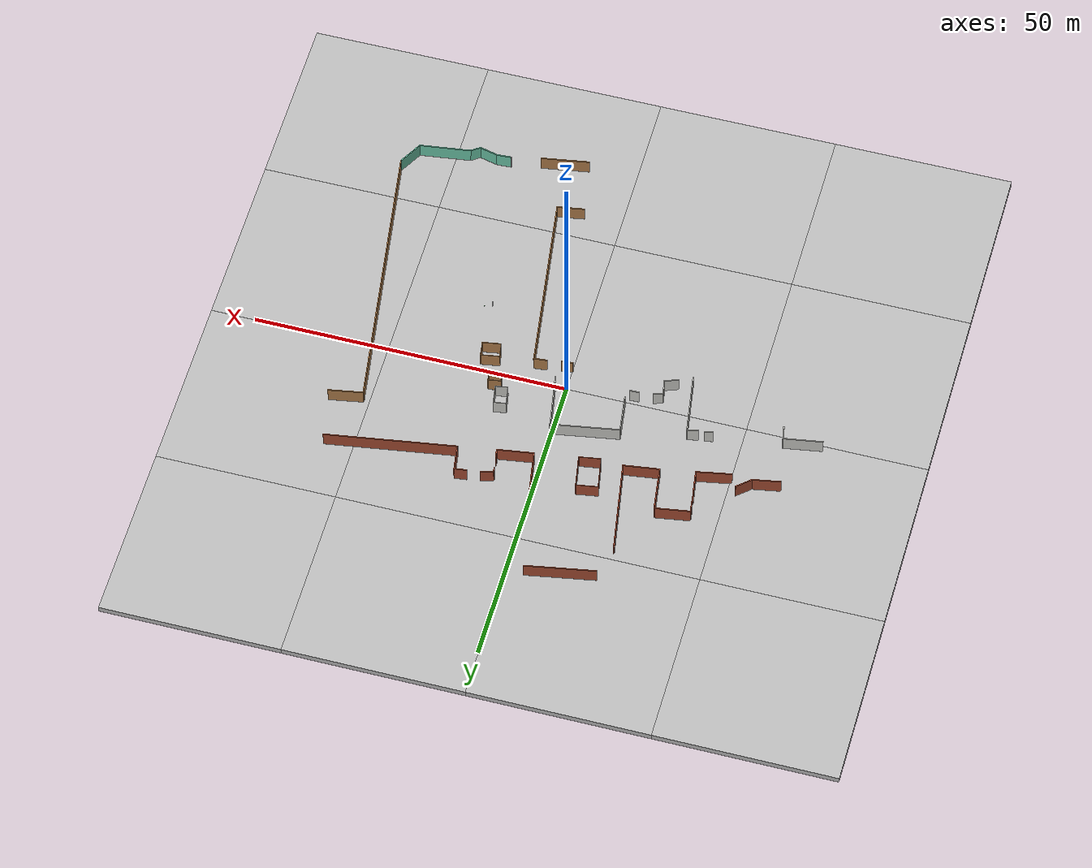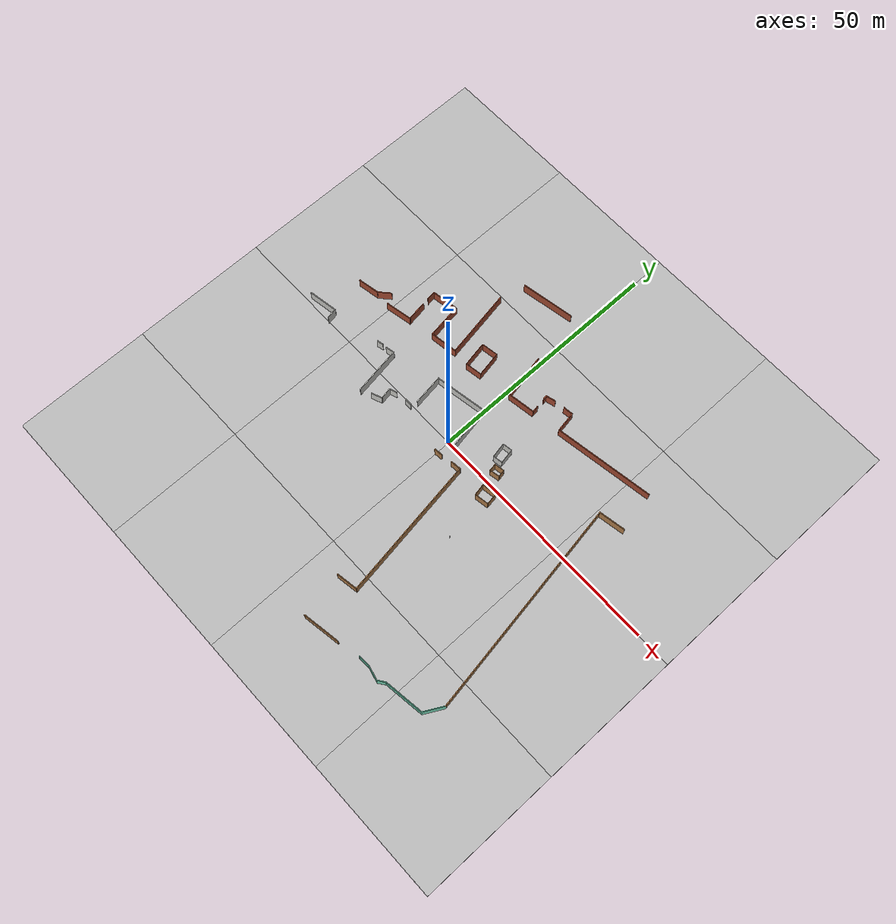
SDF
<sdf version="1.6">
 <world name="default">
  <model name="riseholme_satellite">
   <static>1</static>
   <link name="link">
    <collision name="collision">
     <pose>0 0 -0.5 0 -0 0</pose>
     <geometry><box><size>114.286 114.286 1</size></box></geometry>
    </collision>
    <visual name="visual0_0">
     <pose>-42.8571 42.8571 -0.5 0 -0 1.5708</pose>
     <geometry><box><size>28.5714 28.5714 1</size></box></geometry>
     <material>
      <script>
       <uri>model://riseholme_satellite/materials/scripts</uri>
       <uri>model://riseholme_satellite/materials/textures</uri>
       <name>riseholme_satellite/0_0</name>
      </script>
     </material>
    </visual>
    <visual name="visual0_1">
     <pose>-14.2857 42.8571 -0.5 0 -0 1.5708</pose>
     <geometry><box><size>28.5714 28.5714 1</size></box></geometry>
     <material>
      <script>
       <uri>model://riseholme_satellite/materials/scripts</uri>
       <uri>model://riseholme_satellite/materials/textures</uri>
       <name>riseholme_satellite/0_1</name>
      </script>
     </material>
    </visual>
    <visual name="visual0_2">
     <pose>14.2857 42.8571 -0.5 0 -0 1.5708</pose>
     <geometry><box><size>28.5714 28.5714 1</size></box></geometry>
     <material>
      <script>
       <uri>model://riseholme_satellite/materials/scripts</uri>
       <uri>model://riseholme_satellite/materials/textures</uri>
       <name>riseholme_satellite/0_2</name>
      </script>
     </material>
    </visual>
    <visual name="visual0_3">
     <pose>42.8571 42.8571 -0.5 0 -0 1.5708</pose>
     <geometry><box><size>28.5714 28.5714 1</size></box></geometry>
     <material>
      <script>
       <uri>model://riseholme_satellite/materials/scripts</uri>
       <uri>model://riseholme_satellite/materials/textures</uri>
       <name>riseholme_satellite/0_3</name>
      </script>
     </material>
    </visual>
    <visual name="visual1_0">
     <pose>-42.8571 14.2857 -0.5 0 -0 1.5708</pose>
     <geometry><box><size>28.5714 28.5714 1</size></box></geometry>
     <material>
      <script>
       <uri>model://riseholme_satellite/materials/scripts</uri>
       <uri>model://riseholme_satellite/materials/textures</uri>
       <name>riseholme_satellite/1_0</name>
      </script>
     </material>
    </visual>
    <visual name="visual1_1">
     <pose>-14.2857 14.2857 -0.5 0 -0 1.5708</pose>
     <geometry><box><size>28.5714 28.5714 1</size></box></geometry>
     <material>
      <script>
       <uri>model://riseholme_satellite/materials/scripts</uri>
       <uri>model://riseholme_satellite/materials/textures</uri>
       <name>riseholme_satellite/1_1</name>
      </script>
     </material>
    </visual>
    <visual name="visual1_2">
     <pose>14.2857 14.2857 -0.5 0 -0 1.5708</pose>
     <geometry><box><size>28.5714 28.5714 1</size></box></geometry>
     <material>
      <script>
       <uri>model://riseholme_satellite/materials/scripts</uri>
       <uri>model://riseholme_satellite/materials/textures</uri>
       <name>riseholme_satellite/1_2</name>
      </script>
     </material>
    </visual>
    <visual name="visual1_3">
     <pose>42.8571 14.2857 -0.5 0 -0 1.5708</pose>
     <geometry><box><size>28.5714 28.5714 1</size></box></geometry>
     <material>
      <script>
       <uri>model://riseholme_satellite/materials/scripts</uri>
       <uri>model://riseholme_satellite/materials/textures</uri>
       <name>riseholme_satellite/1_3</name>
      </script>
     </material>
    </visual>
    <visual name="visual2_0">
     <pose>-42.8571 -14.2857 -0.5 0 -0 1.5708</pose>
     <geometry><box><size>28.5714 28.5714 1</size></box></geometry>
     <material>
      <script>
       <uri>model://riseholme_satellite/materials/scripts</uri>
       <uri>model://riseholme_satellite/materials/textures</uri>
       <name>riseholme_satellite/2_0</name>
      </script>
     </material>
    </visual>
    <visual name="visual2_1">
     <pose>-14.2857 -14.2857 -0.5 0 -0 1.5708</pose>
     <geometry><box><size>28.5714 28.5714 1</size></box></geometry>
     <material>
      <script>
       <uri>model://riseholme_satellite/materials/scripts</uri>
       <uri>model://riseholme_satellite/materials/textures</uri>
       <name>riseholme_satellite/2_1</name>
      </script>
     </material>
    </visual>
    <visual name="visual2_2">
     <pose>14.2857 -14.2857 -0.5 0 -0 1.5708</pose>
     <geometry><box><size>28.5714 28.5714 1</size></box></geometry>
     <material>
      <script>
       <uri>model://riseholme_satellite/materials/scripts</uri>
       <uri>model://riseholme_satellite/materials/textures</uri>
       <name>riseholme_satellite/2_2</name>
      </script>
     </material>
    </visual>
    <visual name="visual2_3">
     <pose>42.8571 -14.2857 -0.5 0 -0 1.5708</pose>
     <geometry><box><size>28.5714 28.5714 1</size></box></geometry>
     <material>
      <script>
       <uri>model://riseholme_satellite/materials/scripts</uri>
       <uri>model://riseholme_satellite/materials/textures</uri>
       <name>riseholme_satellite/2_3</name>
      </script>
     </material>
    </visual>
    <visual name="visual3_0">
     <pose>-42.8571 -42.8571 -0.5 0 -0 1.5708</pose>
     <geometry><box><size>28.5714 28.5714 1</size></box></geometry>
     <material>
      <script>
       <uri>model://riseholme_satellite/materials/scripts</uri>
       <uri>model://riseholme_satellite/materials/textures</uri>
       <name>riseholme_satellite/3_0</name>
      </script>
     </material>
    </visual>
    <visual name="visual3_1">
     <pose>-14.2857 -42.8571 -0.5 0 -0 1.5708</pose>
     <geometry><box><size>28.5714 28.5714 1</size></box></geometry>
     <material>
      <script>
       <uri>model://riseholme_satellite/materials/scripts</uri>
       <uri>model://riseholme_satellite/materials/textures</uri>
       <name>riseholme_satellite/3_1</name>
      </script>
     </material>
    </visual>
    <visual name="visual3_2">
     <pose>14.2857 -42.8571 -0.5 0 -0 1.5708</pose>
     <geometry><box><size>28.5714 28.5714 1</size></box></geometry>
     <material>
      <script>
       <uri>model://riseholme_satellite/materials/scripts</uri>
       <uri>model://riseholme_satellite/materials/textures</uri>
       <name>riseholme_satellite/3_2</name>
      </script>
     </material>
    </visual>
    <visual name="visual3_3">
     <pose>42.8571 -42.8571 -0.5 0 -0 1.5708</pose>
     <geometry><box><size>28.5714 28.5714 1</size></box></geometry>
     <material>
      <script>
       <uri>model://riseholme_satellite/materials/scripts</uri>
       <uri>model://riseholme_satellite/materials/textures</uri>
       <name>riseholme_satellite/3_3</name>
      </script>
     </material>
    </visual>
   </link>
  </model>
  <model name="pole_36">
   <static>1</static>
   <pose>15.22 -12.25 0.575 0 -0 0</pose>
   <link name="link">
    <collision name="collision">
     <geometry><cylinder><length>1.15</length><radius>0.025</radius></cylinder></geometry>
    </collision>
    <visual name="visual">
     <geometry><cylinder><length>1.15</length><radius>0.025</radius></cylinder></geometry>
     <material>
      <script><uri>file://media/materials/scripts/gazebo.material</uri><name>Gazebo/Chrome</name></script>
      <shader type="vertex"><normal_map>__default__</normal_map></shader>
      <emissive>0.1 0.1 0.1 1</emissive>
      <specular>0.01 0.01 0.01 1</specular>
      <ambient>0.5 0.5 0.5 1</ambient>
      <diffuse>0.05 0.05 0.05 1</diffuse>
     </material>
    </visual>
   </link>
  </model>
  <model name="pole_45">
   <static>1</static>
   <pose>13.9 -12.45 0.575 0 -0 0</pose>
   <link name="link">
    <collision name="collision">
     <geometry><cylinder><length>1.15</length><radius>0.025</radius></cylinder></geometry>
    </collision>
    <visual name="visual">
     <geometry><cylinder><length>1.15</length><radius>0.025</radius></cylinder></geometry>
     <material>
      <script><uri>file://media/materials/scripts/gazebo.material</uri><name>Gazebo/Chrome</name></script>
      <shader type="vertex"><normal_map>__default__</normal_map></shader>
      <emissive>0.1 0.1 0.1 1</emissive>
      <specular>0.01 0.01 0.01 1</specular>
      <ambient>0.5 0.5 0.5 1</ambient>
      <diffuse>0.05 0.05 0.05 1</diffuse>
     </material>
    </visual>
   </link>
  </model>
  <model name="pole_54">
   <static>1</static>
   <pose>12.55 -12.26 0.575 0 -0 0</pose>
   <link name="link">
    <collision name="collision">
     <geometry><cylinder><length>1.15</length><radius>0.025</radius></cylinder></geometry>
    </collision>
    <visual name="visual">
     <geometry><cylinder><length>1.15</length><radius>0.025</radius></cylinder></geometry>
     <material>
      <script><uri>file://media/materials/scripts/gazebo.material</uri><name>Gazebo/Chrome</name></script>
      <shader type="vertex"><normal_map>__default__</normal_map></shader>
      <emissive>0.1 0.1 0.1 1</emissive>
      <specular>0.01 0.01 0.01 1</specular>
      <ambient>0.5 0.5 0.5 1</ambient>
      <diffuse>0.05 0.05 0.05 1</diffuse>
     </material>
    </visual>
   </link>
  </model>
  <model name="riseholme_encolsure">
   <pose>-0.453277 -4.89704 0 0 0 -1.35297</pose>
   <link name="Wall_10">
    <collision name="Wall_10_Collision">
     <geometry><box><size>4.40408 0.15 2.5</size></box></geometry>
     <pose>0 0 1.25 0 -0 0</pose>
    </collision>
    <visual name="Wall_10_Visual">
     <pose>0 0 1.25 0 -0 0</pose>
     <geometry><box><size>4.40408 0.15 2.5</size></box></geometry>
     <material>
      <script><uri>file://media/materials/scripts/gazebo.material</uri><name>Gazebo/Grey</name></script>
      <ambient>0.435294 0.796078 0.67451 1</ambient>
     </material>
     <meta><layer>0</layer></meta>
    </visual>
    <pose>37.9809 28.2217 0 0 -0 -0.71569</pose>
   </link>
   <link name="Wall_100">
    <collision name="Wall_100_Collision">
     <geometry><box><size>1.38035 0.15 2.5</size></box></geometry>
     <pose>0 0 1.25 0 -0 0</pose>
    </collision>
    <visual name="Wall_100_Visual">
     <pose>0 0 1.25 0 -0 0</pose>
     <geometry><box><size>1.38035 0.15 2.5</size></box></geometry>
     <material>
      <script><uri>file://media/materials/scripts/gazebo.material</uri><name>Gazebo/CeilingTiled</name></script>
      <ambient>1 1 1 1</ambient>
     </material>
     <meta><layer>0</layer></meta>
    </visual>
    <pose>-13.3343 -20.6396 0 0 -0 -1.5708</pose>
   </link>
   <link name="Wall_102">
    <collision name="Wall_102_Collision">
     <geometry><box><size>5.25909 0.07 2.5</size></box></geometry>
     <pose>0 0 1.25 0 -0 0</pose>
    </collision>
    <visual name="Wall_102_Visual">
     <pose>0 0 1.25 0 -0 0</pose>
     <geometry><box><size>5.25909 0.07 2.5</size></box></geometry>
     <material>
      <script><uri>file://media/materials/scripts/gazebo.material</uri><name>Gazebo/Bricks</name></script>
      <ambient>1 1 1 1</ambient>
     </material>
     <meta><layer>0</layer></meta>
    </visual>
    <pose>-21.5336 -0.928753 0 0 -0 -0.039709</pose>
   </link>
   <link name="Wall_103">
    <collision name="Wall_103_Collision">
     <geometry><box><size>3.49121 0.07 2.5</size></box></geometry>
     <pose>0 0 1.25 0 -0 0</pose>
    </collision>
    <visual name="Wall_103_Visual">
     <pose>0 0 1.25 0 -0 0</pose>
     <geometry><box><size>3.49121 0.07 2.5</size></box></geometry>
     <material>
      <script><uri>file://media/materials/scripts/gazebo.material</uri><name>Gazebo/Bricks</name></script>
      <ambient>1 1 1 1</ambient>
     </material>
     <meta><layer>0</layer></meta>
    </visual>
    <pose>-19.0441 -2.73925 0 0 -0 -1.63105</pose>
   </link>
   <link name="Wall_104">
    <collision name="Wall_104_Collision">
     <geometry><box><size>5.24692 0.07 2.5</size></box></geometry>
     <pose>0 0 1.25 0 -0 0</pose>
    </collision>
    <visual name="Wall_104_Visual">
     <pose>0 0 1.25 0 -0 0</pose>
     <geometry><box><size>5.24692 0.07 2.5</size></box></geometry>
     <material>
      <script><uri>file://media/materials/scripts/gazebo.material</uri><name>Gazebo/Bricks</name></script>
      <ambient>1 1 1 1</ambient>
     </material>
     <meta><layer>0</layer></meta>
    </visual>
    <pose>-21.7333 -4.34992 0 0 -0 3.10417</pose>
   </link>
   <link name="Wall_105">
    <collision name="Wall_105_Collision">
     <geometry><box><size>3.49429 0.07 2.5</size></box></geometry>
     <pose>0 0 1.25 0 -0 0</pose>
    </collision>
    <visual name="Wall_105_Visual">
     <pose>0 0 1.25 0 -0 0</pose>
     <geometry><box><size>3.49429 0.07 2.5</size></box></geometry>
     <material>
      <script><uri>file://media/materials/scripts/gazebo.material</uri><name>Gazebo/Bricks</name></script>
      <ambient>1 1 1 1</ambient>
     </material>
     <meta><layer>0</layer></meta>
    </visual>
    <pose>-24.2229 -2.53786 0 0 -0 1.51436</pose>
   </link>
   <link name="Wall_11">
    <collision name="Wall_11_Collision">
     <geometry><box><size>8.22495 0.15 2.5</size></box></geometry>
     <pose>0 0 1.25 0 -0 0</pose>
    </collision>
    <visual name="Wall_11_Visual">
     <pose>0 0 1.25 0 -0 0</pose>
     <geometry><box><size>8.22495 0.15 2.5</size></box></geometry>
     <material>
      <script><uri>file://media/materials/scripts/gazebo.material</uri><name>Gazebo/Grey</name></script>
      <ambient>0.435294 0.796078 0.67451 1</ambient>
     </material>
     <meta><layer>0</layer></meta>
    </visual>
    <pose>39.2604 22.8017 0 0 -0 -1.6515</pose>
   </link>
   <link name="Wall_12">
    <collision name="Wall_12_Collision">
     <geometry><box><size>1.81774 0.15 2.5</size></box></geometry>
     <pose>0 0 1.25 0 -0 0</pose>
    </collision>
    <visual name="Wall_12_Visual">
     <pose>0 0 1.25 0 -0 0</pose>
     <geometry><box><size>1.81774 0.15 2.5</size></box></geometry>
     <material>
      <script><uri>file://media/materials/scripts/gazebo.material</uri><name>Gazebo/Grey</name></script>
      <ambient>0.435294 0.796078 0.67451 1</ambient>
     </material>
     <meta><layer>0</layer></meta>
    </visual>
    <pose>39.2604 18.0097 0 0 -0 -1.16969</pose>
   </link>
   <link name="Wall_13">
    <collision name="Wall_13_Collision">
     <geometry><box><size>3.14637 0.15 2.5</size></box></geometry>
     <pose>0 0 1.25 0 -0 0</pose>
    </collision>
    <visual name="Wall_13_Visual">
     <pose>0 0 1.25 0 -0 0</pose>
     <geometry><box><size>3.14637 0.15 2.5</size></box></geometry>
     <material>
      <script><uri>file://media/materials/scripts/gazebo.material</uri><name>Gazebo/Grey</name></script>
      <ambient>0.435294 0.796078 0.67451 1</ambient>
     </material>
     <meta><layer>0</layer></meta>
    </visual>
    <pose>38.9349 15.8932 0 0 -0 -2.02041</pose>
   </link>
   <link name="Wall_14">
    <collision name="Wall_14_Collision">
     <geometry><box><size>2.45986 0.15 2.5</size></box></geometry>
     <pose>0 0 1.25 0 -0 0</pose>
    </collision>
    <visual name="Wall_14_Visual">
     <pose>0 0 1.25 0 -0 0</pose>
     <geometry><box><size>2.45986 0.15 2.5</size></box></geometry>
     <material>
      <script><uri>file://media/materials/scripts/gazebo.material</uri><name>Gazebo/Grey</name></script>
      <ambient>0.435294 0.796078 0.67451 1</ambient>
     </material>
     <meta><layer>0</layer></meta>
    </visual>
    <pose>38.0974 13.4042 0 0 -0 -1.73296</pose>
   </link>
   <link name="Wall_15">
    <collision name="Wall_15_Collision">
     <geometry><box><size>0.16 0.15 2.5</size></box></geometry>
     <pose>0 0 1.25 0 -0 0</pose>
    </collision>
    <visual name="Wall_15_Visual">
     <pose>0 0 1.25 0 -0 0</pose>
     <geometry><box><size>0.16 0.15 2.5</size></box></geometry>
     <material>
      <script><uri>file://media/materials/scripts/gazebo.material</uri><name>Gazebo/Grey</name></script>
      <ambient>1 1 1 1</ambient>
     </material>
     <meta><layer>0</layer></meta>
    </visual>
    <pose>37.9161 12.2642 0 0 -0 -0.015821</pose>
   </link>
   <link name="Wall_17">
    <collision name="Wall_17_Collision">
     <geometry><box><size>7.7914 0.15 2.5</size></box></geometry>
     <pose>0 0 1.25 0 -0 0</pose>
    </collision>
    <visual name="Wall_17_Visual">
     <pose>0 0 1.25 0 -0 0</pose>
     <geometry><box><size>7.7914 0.15 2.5</size></box></geometry>
     <material>
      <script><uri>file://media/materials/scripts/gazebo.material</uri><name>Gazebo/Wood</name></script>
      <ambient>1 1 1 1</ambient>
     </material>
     <meta><layer>0</layer></meta>
    </visual>
    <pose>37.7484 3.75021 0 0 -0 -1.62562</pose>
   </link>
   <link name="Wall_19">
    <collision name="Wall_19_Collision">
     <geometry><box><size>4.48297 0.15 2.5</size></box></geometry>
     <pose>0 0 1.25 0 -0 0</pose>
    </collision>
    <visual name="Wall_19_Visual">
     <pose>0 0 1.25 0 -0 0</pose>
     <geometry><box><size>4.48297 0.15 2.5</size></box></geometry>
     <material>
      <script><uri>file://media/materials/scripts/gazebo.material</uri><name>Gazebo/Wood</name></script>
      <ambient>1 1 1 1</ambient>
     </material>
     <meta><layer>0</layer></meta>
    </visual>
    <pose>28.3339 2.41776 0 0 -0 1.51709</pose>
   </link>
   <link name="Wall_20">
    <collision name="Wall_20_Collision">
     <geometry><box><size>29.5845 0.15 2.5</size></box></geometry>
     <pose>0 0 1.25 0 -0 0</pose>
    </collision>
    <visual name="Wall_20_Visual">
     <pose>0 0 1.25 0 -0 0</pose>
     <geometry><box><size>29.5845 0.15 2.5</size></box></geometry>
     <material>
      <script><uri>file://media/materials/scripts/gazebo.material</uri><name>Gazebo/Wood</name></script>
      <ambient>1 1 1 1</ambient>
     </material>
     <meta><layer>0</layer></meta>
    </visual>
    <pose>13.7719 5.65117 0 0 -0 3.06882</pose>
   </link>
   <link name="Wall_21">
    <collision name="Wall_21_Collision">
     <geometry><box><size>2.21023 0.15 2.5</size></box></geometry>
     <pose>0 0 1.25 0 -0 0</pose>
    </collision>
    <visual name="Wall_21_Visual">
     <pose>0 0 1.25 0 -0 0</pose>
     <geometry><box><size>2.21023 0.15 2.5</size></box></geometry>
     <material>
      <script><uri>file://media/materials/scripts/gazebo.material</uri><name>Gazebo/Wood</name></script>
      <ambient>1 1 1 1</ambient>
     </material>
     <meta><layer>0</layer></meta>
    </visual>
    <pose>-1.02272 5.6977 0 0 -0 -1.68395</pose>
   </link>
   <link name="Wall_23">
    <collision name="Wall_23_Collision">
     <geometry><box><size>1.78894 0.15 2.5</size></box></geometry>
     <pose>0 0 1.25 0 -0 0</pose>
    </collision>
    <visual name="Wall_23_Visual">
     <pose>0 0 1.25 0 -0 0</pose>
     <geometry><box><size>1.78894 0.15 2.5</size></box></geometry>
     <material>
      <script><uri>file://media/materials/scripts/gazebo.material</uri><name>Gazebo/Wood</name></script>
      <ambient>1 1 1 1</ambient>
     </material>
     <meta><layer>0</layer></meta>
    </visual>
    <pose>-1.32513 1.53381 0 0 -0 -1.68459</pose>
   </link>
   <link name="Wall_25">
    <collision name="Wall_25_Collision">
     <geometry><box><size>9.22979 0.15 2.5</size></box></geometry>
     <pose>0 0 1.25 0 -0 0</pose>
    </collision>
    <visual name="Wall_25_Visual">
     <pose>0 0 1.25 0 -0 0</pose>
     <geometry><box><size>9.22979 0.15 2.5</size></box></geometry>
     <material>
      <script><uri>file://media/materials/scripts/gazebo.material</uri><name>Gazebo/CeilingTiled</name></script>
      <ambient>1 1 1 1</ambient>
     </material>
     <meta><layer>0</layer></meta>
    </visual>
    <pose>-8.65264 3.41803 0 0 -0 3.10059</pose>
   </link>
   <link name="Wall_28">
    <collision name="Wall_28_Collision">
     <geometry><box><size>20.7055 0.15 2.5</size></box></geometry>
     <pose>0 0 1.25 0 -0 0</pose>
    </collision>
    <visual name="Wall_28_Visual">
     <pose>0 0 1.25 0 -0 0</pose>
     <geometry><box><size>20.7055 0.15 2.5</size></box></geometry>
     <material>
      <script><uri>file://media/materials/scripts/gazebo.material</uri><name>Gazebo/Bricks</name></script>
      <ambient>1 1 1 1</ambient>
     </material>
     <meta><layer>0</layer></meta>
    </visual>
    <pose>-17.2596 27.7733 0 0 -0 -1.63194</pose>
   </link>
   <link name="Wall_29">
    <collision name="Wall_29_Collision">
     <geometry><box><size>4.29716 0.15 2.5</size></box></geometry>
     <pose>0 0 1.25 0 -0 0</pose>
    </collision>
    <visual name="Wall_29_Visual">
     <pose>0 0 1.25 0 -0 0</pose>
     <geometry><box><size>4.29716 0.15 2.5</size></box></geometry>
     <material>
      <script><uri>file://media/materials/scripts/gazebo.material</uri><name>Gazebo/Bricks</name></script>
      <ambient>1 1 1 1</ambient>
     </material>
     <meta><layer>0</layer></meta>
    </visual>
    <pose>-19.958 17.6311 0 0 -0 3.08547</pose>
   </link>
   <link name="Wall_30">
    <collision name="Wall_30_Collision">
     <geometry><box><size>2.06654 0.15 2.5</size></box></geometry>
     <pose>0 0 1.25 0 -0 0</pose>
    </collision>
    <visual name="Wall_30_Visual">
     <pose>0 0 1.25 0 -0 0</pose>
     <geometry><box><size>2.06654 0.15 2.5</size></box></geometry>
     <material>
      <script><uri>file://media/materials/scripts/gazebo.material</uri><name>Gazebo/Bricks</name></script>
      <ambient>1 1 1 1</ambient>
     </material>
     <meta><layer>0</layer></meta>
    </visual>
    <pose>-22.1213 16.7937 0 0 -0 -1.66805</pose>
   </link>
   <link name="Wall_32">
    <collision name="Wall_32_Collision">
     <geometry><box><size>2.10622 0.15 2.5</size></box></geometry>
     <pose>0 0 1.25 0 -0 0</pose>
    </collision>
    <visual name="Wall_32_Visual">
     <pose>0 0 1.25 0 -0 0</pose>
     <geometry><box><size>2.10622 0.15 2.5</size></box></geometry>
     <material>
      <script><uri>file://media/materials/scripts/gazebo.material</uri><name>Gazebo/Bricks</name></script>
      <ambient>1 1 1 1</ambient>
     </material>
     <meta><layer>0</layer></meta>
    </visual>
    <pose>-22.3539 12.7228 0 0 -0 -1.52321</pose>
   </link>
   <link name="Wall_33">
    <collision name="Wall_33_Collision">
     <geometry><box><size>0.900176 0.15 2.5</size></box></geometry>
     <pose>0 0 1.25 0 -0 0</pose>
    </collision>
    <visual name="Wall_33_Visual">
     <pose>0 0 1.25 0 -0 0</pose>
     <geometry><box><size>0.900176 0.15 2.5</size></box></geometry>
     <material>
      <script><uri>file://media/materials/scripts/gazebo.material</uri><name>Gazebo/Bricks</name></script>
      <ambient>1 1 1 1</ambient>
     </material>
     <meta><layer>0</layer></meta>
    </visual>
    <pose>-21.9352 11.6993 0 0 -0 -0.124355</pose>
   </link>
   <link name="Wall_35">
    <collision name="Wall_35_Collision">
     <geometry><box><size>1.5024 0.15 2.5</size></box></geometry>
     <pose>0 0 1.25 0 -0 0</pose>
    </collision>
    <visual name="Wall_35_Visual">
     <pose>0 0 1.25 0 -0 0</pose>
     <geometry><box><size>1.5024 0.15 2.5</size></box></geometry>
     <material>
      <script><uri>file://media/materials/scripts/gazebo.material</uri><name>Gazebo/Bricks</name></script>
      <ambient>1 1 1 1</ambient>
     </material>
     <meta><layer>0</layer></meta>
    </visual>
    <pose>-18.8879 11.5132 0 0 -0 -0.068856</pose>
   </link>
   <link name="Wall_36">
    <collision name="Wall_36_Collision">
     <geometry><box><size>5.83811 0.15 2.5</size></box></geometry>
     <pose>0 0 1.25 0 -0 0</pose>
    </collision>
    <visual name="Wall_36_Visual">
     <pose>0 0 1.25 0 -0 0</pose>
     <geometry><box><size>5.83811 0.15 2.5</size></box></geometry>
     <material>
      <script><uri>file://media/materials/scripts/gazebo.material</uri><name>Gazebo/Bricks</name></script>
      <ambient>1 1 1 1</ambient>
     </material>
     <meta><layer>0</layer></meta>
    </visual>
    <pose>-18.3994 8.6287 0 0 -0 -1.63628</pose>
   </link>
   <link name="Wall_44">
    <collision name="Wall_44_Collision">
     <geometry><box><size>1.5575 0.07 2.5</size></box></geometry>
     <pose>0 0 1.25 0 -0 0</pose>
    </collision>
    <visual name="Wall_44_Visual">
     <pose>0 0 1.25 0 -0 0</pose>
     <geometry><box><size>1.5575 0.07 2.5</size></box></geometry>
     <material>
      <script><uri>file://media/materials/scripts/gazebo.material</uri><name>Gazebo/Wood</name></script>
      <ambient>1 1 1 1</ambient>
     </material>
     <meta><layer>0</layer></meta>
    </visual>
    <pose>-4.6011 11.5102 0 0 -0 -0.068625</pose>
   </link>
   <link name="Wall_48">
    <collision name="Wall_48_Collision">
     <geometry><box><size>2.1141 0.07 2.5</size></box></geometry>
     <pose>0 0 1.25 0 -0 0</pose>
    </collision>
    <visual name="Wall_48_Visual">
     <pose>0 0 1.25 0 -0 0</pose>
     <geometry><box><size>2.1141 0.07 2.5</size></box></geometry>
     <material>
      <script><uri>file://media/materials/scripts/gazebo.material</uri><name>Gazebo/Wood</name></script>
      <ambient>1 1 1 1</ambient>
     </material>
     <meta><layer>0</layer></meta>
    </visual>
    <pose>-3.8286 12.4807 0 0 -0 1.54095</pose>
   </link>
   <link name="Wall_49">
    <collision name="Wall_49_Collision">
     <geometry><box><size>1.51805 0.07 2.5</size></box></geometry>
     <pose>0 0 1.25 0 -0 0</pose>
    </collision>
    <visual name="Wall_49_Visual">
     <pose>0 0 1.25 0 -0 0</pose>
     <geometry><box><size>1.51805 0.07 2.5</size></box></geometry>
     <material>
      <script><uri>file://media/materials/scripts/gazebo.material</uri><name>Gazebo/Wood</name></script>
      <ambient>1 1 1 1</ambient>
     </material>
     <meta><layer>0</layer></meta>
    </visual>
    <pose>-4.52166 13.5281 0 0 -0 3.10583</pose>
   </link>
   <link name="Wall_5">
    <collision name="Wall_5_Collision">
     <geometry><box><size>5.55178 0.15 2.5</size></box></geometry>
     <pose>0 0 1.25 0 -0 0</pose>
    </collision>
    <visual name="Wall_5_Visual">
     <pose>0 0 1.25 0 -0 0</pose>
     <geometry><box><size>5.55178 0.15 2.5</size></box></geometry>
     <material>
      <script><uri>file://media/materials/scripts/gazebo.material</uri><name>Gazebo/Wood</name></script>
      <ambient>1 1 1 1</ambient>
     </material>
     <meta><layer>0</layer></meta>
    </visual>
    <pose>-8.44986 35.2004 0 0 -0 -1.61387</pose>
   </link>
   <link name="Wall_56">
    <collision name="Wall_56_Collision">
     <geometry><box><size>3.10664 0.07 2.5</size></box></geometry>
     <pose>0 0 1.25 0 -0 0</pose>
    </collision>
    <visual name="Wall_56_Visual">
     <pose>0 0 1.25 0 -0 0</pose>
     <geometry><box><size>3.10664 0.07 2.5</size></box></geometry>
     <material>
      <script><uri>file://media/materials/scripts/gazebo.material</uri><name>Gazebo/CeilingTiled</name></script>
      <ambient>1 1 1 1</ambient>
     </material>
     <meta><layer>0</layer></meta>
    </visual>
    <pose>-7.90402 12.4344 0 0 -0 -0.042937</pose>
   </link>
   <link name="Wall_57">
    <collision name="Wall_57_Collision">
     <geometry><box><size>2.00785 0.07 2.5</size></box></geometry>
     <pose>0 0 1.25 0 -0 0</pose>
    </collision>
    <visual name="Wall_57_Visual">
     <pose>0 0 1.25 0 -0 0</pose>
     <geometry><box><size>2.00785 0.07 2.5</size></box></geometry>
     <material>
      <script><uri>file://media/materials/scripts/gazebo.material</uri><name>Gazebo/CeilingTiled</name></script>
      <ambient>1 1 1 1</ambient>
     </material>
     <meta><layer>0</layer></meta>
    </visual>
    <pose>-6.4376 11.4016 0 0 -0 -1.62294</pose>
   </link>
   <link name="Wall_58">
    <collision name="Wall_58_Collision">
     <geometry><box><size>3.12574 0.07 2.5</size></box></geometry>
     <pose>0 0 1.25 0 -0 0</pose>
    </collision>
    <visual name="Wall_58_Visual">
     <pose>0 0 1.25 0 -0 0</pose>
     <geometry><box><size>3.12574 0.07 2.5</size></box></geometry>
     <material>
      <script><uri>file://media/materials/scripts/gazebo.material</uri><name>Gazebo/CeilingTiled</name></script>
      <ambient>1 1 1 1</ambient>
     </material>
     <meta><layer>0</layer></meta>
    </visual>
    <pose>-8.0156 10.4711 0 0 -0 3.11541</pose>
   </link>
   <link name="Wall_59">
    <collision name="Wall_59_Collision">
     <geometry><box><size>2.06504 0.07 2.5</size></box></geometry>
     <pose>0 0 1.25 0 -0 0</pose>
    </collision>
    <visual name="Wall_59_Visual">
     <pose>0 0 1.25 0 -0 0</pose>
     <geometry><box><size>2.06504 0.07 2.5</size></box></geometry>
     <material>
      <script><uri>file://media/materials/scripts/gazebo.material</uri><name>Gazebo/CeilingTiled</name></script>
      <ambient>1 1 1 1</ambient>
     </material>
     <meta><layer>0</layer></meta>
    </visual>
    <pose>-9.48241 11.5097 0 0 -0 1.50992</pose>
   </link>
   <link name="Wall_6">
    <collision name="Wall_6_Collision">
     <geometry><box><size>45.1846 0.15 2.5</size></box></geometry>
     <pose>0 0 1.25 0 -0 0</pose>
    </collision>
    <visual name="Wall_6_Visual">
     <pose>0 0 1.25 0 -0 0</pose>
     <geometry><box><size>45.1846 0.15 2.5</size></box></geometry>
     <material>
      <script><uri>file://media/materials/scripts/gazebo.material</uri><name>Gazebo/Wood</name></script>
      <ambient>1 1 1 1</ambient>
     </material>
     <meta><layer>0</layer></meta>
    </visual>
    <pose>13.9049 31.0596 0 0 -0 -0.0641</pose>
   </link>
   <link name="Wall_61">
    <collision name="Wall_61_Collision">
     <geometry><box><size>2.44653 0.07 2.5</size></box></geometry>
     <pose>0 0 1.25 0 -0 0</pose>
    </collision>
    <visual name="Wall_61_Visual">
     <pose>0 0 1.25 0 -0 0</pose>
     <geometry><box><size>2.44653 0.07 2.5</size></box></geometry>
     <material>
      <script><uri>file://media/materials/scripts/gazebo.material</uri><name>Gazebo/Wood</name></script>
      <ambient>1 1 1 1</ambient>
     </material>
     <meta><layer>0</layer></meta>
    </visual>
    <pose>0.595403 14.8812 0 0 -0 -0.06822</pose>
   </link>
   <link name="Wall_62">
    <collision name="Wall_62_Collision">
     <geometry><box><size>2.9539 0.07 2.5</size></box></geometry>
     <pose>0 0 1.25 0 -0 0</pose>
    </collision>
    <visual name="Wall_62_Visual">
     <pose>0 0 1.25 0 -0 0</pose>
     <geometry><box><size>2.9539 0.07 2.5</size></box></geometry>
     <material>
      <script><uri>file://media/materials/scripts/gazebo.material</uri><name>Gazebo/Wood</name></script>
      <ambient>1 1 1 1</ambient>
     </material>
     <meta><layer>0</layer></meta>
    </visual>
    <pose>1.7059 13.3602 0 0 -0 -1.62283</pose>
   </link>
   <link name="Wall_63">
    <collision name="Wall_63_Collision">
     <geometry><box><size>2.45355 0.07 2.5</size></box></geometry>
     <pose>0 0 1.25 0 -0 0</pose>
    </collision>
    <visual name="Wall_63_Visual">
     <pose>0 0 1.25 0 -0 0</pose>
     <geometry><box><size>2.45355 0.07 2.5</size></box></geometry>
     <material>
      <script><uri>file://media/materials/scripts/gazebo.material</uri><name>Gazebo/Wood</name></script>
      <ambient>1 1 1 1</ambient>
     </material>
     <meta><layer>0</layer></meta>
    </visual>
    <pose>0.439403 11.9547 0 0 -0 3.11265</pose>
   </link>
   <link name="Wall_64">
    <collision name="Wall_64_Collision">
     <geometry><box><size>3.04759 0.07 2.5</size></box></geometry>
     <pose>0 0 1.25 0 -0 0</pose>
    </collision>
    <visual name="Wall_64_Visual">
     <pose>0 0 1.25 0 -0 0</pose>
     <geometry><box><size>3.04759 0.07 2.5</size></box></geometry>
     <material>
      <script><uri>file://media/materials/scripts/gazebo.material</uri><name>Gazebo/Wood</name></script>
      <ambient>1 1 1 1</ambient>
     </material>
     <meta><layer>0</layer></meta>
    </visual>
    <pose>-0.665097 13.4757 0 0 -0 1.51234</pose>
   </link>
   <link name="Wall_66">
    <collision name="Wall_66_Collision">
     <geometry><box><size>2.06517 0.07 2.5</size></box></geometry>
     <pose>0 0 1.25 0 -0 0</pose>
    </collision>
    <visual name="Wall_66_Visual">
     <pose>0 0 1.25 0 -0 0</pose>
     <geometry><box><size>2.06517 0.07 2.5</size></box></geometry>
     <material>
      <script><uri>file://media/materials/scripts/gazebo.material</uri><name>Gazebo/Wood</name></script>
      <ambient>1 1 1 1</ambient>
     </material>
     <meta><layer>0</layer></meta>
    </visual>
    <pose>-5.29416 12.5576 0 0 -0 1.52172</pose>
   </link>
   <link name="Wall_68">
    <collision name="Wall_68_Collision">
     <geometry><box><size>9.43343 0.15 2.5</size></box></geometry>
     <pose>0 0 1.25 0 -0 0</pose>
    </collision>
    <visual name="Wall_68_Visual">
     <pose>0 0 1.25 0 -0 0</pose>
     <geometry><box><size>9.43343 0.15 2.5</size></box></geometry>
     <material>
      <script><uri>file://media/materials/scripts/gazebo.material</uri><name>Gazebo/Bricks</name></script>
      <ambient>1 1 1 1</ambient>
     </material>
     <meta><layer>0</layer></meta>
    </visual>
    <pose>-23.2225 6.00059 0 0 -0 3.09637</pose>
   </link>
   <link name="Wall_70">
    <collision name="Wall_70_Collision">
     <geometry><box><size>11.2057 0.15 2.5</size></box></geometry>
     <pose>0 0 1.25 0 -0 0</pose>
    </collision>
    <visual name="Wall_70_Visual">
     <pose>0 0 1.25 0 -0 0</pose>
     <geometry><box><size>11.2057 0.15 2.5</size></box></geometry>
     <material>
      <script><uri>file://media/materials/scripts/gazebo.material</uri><name>Gazebo/Bricks</name></script>
      <ambient>1 1 1 1</ambient>
     </material>
     <meta><layer>0</layer></meta>
    </visual>
    <pose>-39.3963 0.795734 0 0 -0 -1.61018</pose>
   </link>
   <link name="Wall_72">
    <collision name="Wall_72_Collision">
     <geometry><box><size>14.6971 0.15 2.5</size></box></geometry>
     <pose>0 0 1.25 0 -0 0</pose>
    </collision>
    <visual name="Wall_72_Visual">
     <pose>0 0 1.25 0 -0 0</pose>
     <geometry><box><size>14.6971 0.15 2.5</size></box></geometry>
     <material>
      <script><uri>file://media/materials/scripts/gazebo.material</uri><name>Gazebo/Bricks</name></script>
      <ambient>1 1 1 1</ambient>
     </material>
     <meta><layer>0</layer></meta>
    </visual>
    <pose>-27.4513 -7.47598 0 0 -0 -0.048651</pose>
   </link>
   <link name="Wall_73">
    <collision name="Wall_73_Collision">
     <geometry><box><size>5.77205 0.15 2.5</size></box></geometry>
     <pose>0 0 1.25 0 -0 0</pose>
    </collision>
    <visual name="Wall_73_Visual">
     <pose>0 0 1.25 0 -0 0</pose>
     <geometry><box><size>5.77205 0.15 2.5</size></box></geometry>
     <material>
      <script><uri>file://media/materials/scripts/gazebo.material</uri><name>Gazebo/Bricks</name></script>
      <ambient>1 1 1 1</ambient>
     </material>
     <meta><layer>0</layer></meta>
    </visual>
    <pose>-20.404 -10.6323 0 0 -0 -1.64831</pose>
   </link>
   <link name="Wall_74">
    <collision name="Wall_74_Collision">
     <geometry><box><size>7.35391 0.15 2.5</size></box></geometry>
     <pose>0 0 1.25 0 -0 0</pose>
    </collision>
    <visual name="Wall_74_Visual">
     <pose>0 0 1.25 0 -0 0</pose>
     <geometry><box><size>7.35391 0.15 2.5</size></box></geometry>
     <material>
      <script><uri>file://media/materials/scripts/gazebo.material</uri><name>Gazebo/Bricks</name></script>
      <ambient>1 1 1 1</ambient>
     </material>
     <meta><layer>0</layer></meta>
    </visual>
    <pose>-24.2134 -13.1628 0 0 -0 3.06598</pose>
   </link>
   <link name="Wall_75">
    <collision name="Wall_75_Collision">
     <geometry><box><size>5.65602 0.15 2.5</size></box></geometry>
     <pose>0 0 1.25 0 -0 0</pose>
    </collision>
    <visual name="Wall_75_Visual">
     <pose>0 0 1.25 0 -0 0</pose>
     <geometry><box><size>5.65602 0.15 2.5</size></box></geometry>
     <material>
      <script><uri>file://media/materials/scripts/gazebo.material</uri><name>Gazebo/Bricks</name></script>
      <ambient>1 1 1 1</ambient>
     </material>
     <meta><layer>0</layer></meta>
    </visual>
    <pose>-27.9683 -15.6388 0 0 -0 -1.63013</pose>
   </link>
   <link name="Wall_76">
    <collision name="Wall_76_Collision">
     <geometry><box><size>1.89905 0.15 2.5</size></box></geometry>
     <pose>0 0 1.25 0 -0 0</pose>
    </collision>
    <visual name="Wall_76_Visual">
     <pose>0 0 1.25 0 -0 0</pose>
     <geometry><box><size>1.89905 0.15 2.5</size></box></geometry>
     <material>
      <script><uri>file://media/materials/scripts/gazebo.material</uri><name>Gazebo/Bricks</name></script>
      <ambient>1 1 1 1</ambient>
     </material>
     <meta><layer>0</layer></meta>
    </visual>
    <pose>-27.2608 -18.4686 0 0 -0 -0.093477</pose>
   </link>
   <link name="Wall_78">
    <collision name="Wall_78_Collision">
     <geometry><box><size>4.2405 0.15 2.5</size></box></geometry>
     <pose>0 0 1.25 0 -0 0</pose>
    </collision>
    <visual name="Wall_78_Visual">
     <pose>0 0 1.25 0 -0 0</pose>
     <geometry><box><size>4.2405 0.15 2.5</size></box></geometry>
     <material>
      <script><uri>file://media/materials/scripts/gazebo.material</uri><name>Gazebo/Bricks</name></script>
      <ambient>1 1 1 1</ambient>
     </material>
     <meta><layer>0</layer></meta>
    </visual>
    <pose>-22.8801 -18.7952 0 0 -0 -0.066568</pose>
   </link>
   <link name="Wall_79">
    <collision name="Wall_79_Collision">
     <geometry><box><size>5.64876 0.15 2.5</size></box></geometry>
     <pose>0 0 1.25 0 -0 0</pose>
    </collision>
    <visual name="Wall_79_Visual">
     <pose>0 0 1.25 0 -0 0</pose>
     <geometry><box><size>5.64876 0.15 2.5</size></box></geometry>
     <material>
      <script><uri>file://media/materials/scripts/gazebo.material</uri><name>Gazebo/Bricks</name></script>
      <ambient>1 1 1 1</ambient>
     </material>
     <meta><layer>0</layer></meta>
    </visual>
    <pose>-20.921 -21.6794 0 0 -0 -1.60049</pose>
   </link>
   <link name="Wall_81">
    <collision name="Wall_81_Collision">
     <geometry><box><size>2.9514 0.15 2.5</size></box></geometry>
     <pose>0 0 1.25 0 -0 0</pose>
    </collision>
    <visual name="Wall_81_Visual">
     <pose>0 0 1.25 0 -0 0</pose>
     <geometry><box><size>2.9514 0.15 2.5</size></box></geometry>
     <material>
      <script><uri>file://media/materials/scripts/gazebo.material</uri><name>Gazebo/Bricks</name></script>
      <ambient>1 1 1 1</ambient>
     </material>
     <meta><layer>0</layer></meta>
    </visual>
    <pose>-22.5536 -26.305 0 0 -0 -1.0637</pose>
   </link>
   <link name="Wall_82">
    <collision name="Wall_82_Collision">
     <geometry><box><size>4.50659 0.15 2.5</size></box></geometry>
     <pose>0 0 1.25 0 -0 0</pose>
    </collision>
    <visual name="Wall_82_Visual">
     <pose>0 0 1.25 0 -0 0</pose>
     <geometry><box><size>4.50659 0.15 2.5</size></box></geometry>
     <material>
      <script><uri>file://media/materials/scripts/gazebo.material</uri><name>Gazebo/Bricks</name></script>
      <ambient>1 1 1 1</ambient>
     </material>
     <meta><layer>0</layer></meta>
    </visual>
    <pose>-21.955 -29.7062 0 0 -0 -1.60828</pose>
   </link>
   <link name="Wall_84">
    <collision name="Wall_84_Collision">
     <geometry><box><size>6.19934 0.15 2.5</size></box></geometry>
     <pose>0 0 1.25 0 -0 0</pose>
    </collision>
    <visual name="Wall_84_Visual">
     <pose>0 0 1.25 0 -0 0</pose>
     <geometry><box><size>6.19934 0.15 2.5</size></box></geometry>
     <material>
      <script><uri>file://media/materials/scripts/gazebo.material</uri><name>Gazebo/CeilingTiled</name></script>
      <ambient>1 1 1 1</ambient>
     </material>
     <meta><layer>0</layer></meta>
    </visual>
    <pose>-14.2002 -35.0121 0 0 -0 1.51679</pose>
   </link>
   <link name="Wall_85">
    <collision name="Wall_85_Collision">
     <geometry><box><size>2.27304 0.15 2.5</size></box></geometry>
     <pose>0 0 1.25 0 -0 0</pose>
    </collision>
    <visual name="Wall_85_Visual">
     <pose>0 0 1.25 0 -0 0</pose>
     <geometry><box><size>2.27304 0.15 2.5</size></box></geometry>
     <material>
      <script><uri>file://media/materials/scripts/gazebo.material</uri><name>Gazebo/CeilingTiled</name></script>
      <ambient>1 1 1 1</ambient>
     </material>
     <meta><layer>0</layer></meta>
    </visual>
    <pose>-12.9758 -32.019 0 0 -0 -0.025635</pose>
   </link>
   <link name="Wall_87">
    <collision name="Wall_87_Collision">
     <geometry><box><size>10.9517 0.15 2.5</size></box></geometry>
     <pose>0 0 1.25 0 -0 0</pose>
    </collision>
    <visual name="Wall_87_Visual">
     <pose>0 0 1.25 0 -0 0</pose>
     <geometry><box><size>10.9517 0.15 2.5</size></box></geometry>
     <material>
      <script><uri>file://media/materials/scripts/gazebo.material</uri><name>Gazebo/CeilingTiled</name></script>
      <ambient>1 1 1 1</ambient>
     </material>
     <meta><layer>0</layer></meta>
    </visual>
    <pose>-13.358 -1.71119 0 0 -0 -1.61901</pose>
   </link>
   <link name="Wall_88">
    <collision name="Wall_88_Collision">
     <geometry><box><size>6.3199 0.15 2.5</size></box></geometry>
     <pose>0 0 1.25 0 -0 0</pose>
    </collision>
    <visual name="Wall_88_Visual">
     <pose>0 0 1.25 0 -0 0</pose>
     <geometry><box><size>6.3199 0.15 2.5</size></box></geometry>
     <material>
      <script><uri>file://media/materials/scripts/gazebo.material</uri><name>Gazebo/CeilingTiled</name></script>
      <ambient>1 1 1 1</ambient>
     </material>
     <meta><layer>0</layer></meta>
    </visual>
    <pose>-10.5424 -7.34239 0 0 -0 -0.076772</pose>
   </link>
   <link name="Wall_90">
    <collision name="Wall_90_Collision">
     <geometry><box><size>1.55137 0.15 2.5</size></box></geometry>
     <pose>0 0 1.25 0 -0 0</pose>
    </collision>
    <visual name="Wall_90_Visual">
     <pose>0 0 1.25 0 -0 0</pose>
     <geometry><box><size>1.55137 0.15 2.5</size></box></geometry>
     <material>
      <script><uri>file://media/materials/scripts/gazebo.material</uri><name>Gazebo/CeilingTiled</name></script>
      <ambient>1 1 1 1</ambient>
     </material>
     <meta><layer>0</layer></meta>
    </visual>
    <pose>-6.33083 -8.97496 0 0 -0 -1.77481</pose>
   </link>
   <link name="Wall_92">
    <collision name="Wall_92_Collision">
     <geometry><box><size>1.57671 0.15 2.5</size></box></geometry>
     <pose>0 0 1.25 0 -0 0</pose>
    </collision>
    <visual name="Wall_92_Visual">
     <pose>0 0 1.25 0 -0 0</pose>
     <geometry><box><size>1.57671 0.15 2.5</size></box></geometry>
     <material>
      <script><uri>file://media/materials/scripts/gazebo.material</uri><name>Gazebo/CeilingTiled</name></script>
      <ambient>1 1 1 1</ambient>
     </material>
     <meta><layer>0</layer></meta>
    </visual>
    <pose>-6.59109 -12.6423 0 0 -0 -1.47113</pose>
   </link>
   <link name="Wall_94">
    <collision name="Wall_94_Collision">
     <geometry><box><size>2.51794 0.15 2.5</size></box></geometry>
     <pose>0 0 1.25 0 -0 0</pose>
    </collision>
    <visual name="Wall_94_Visual">
     <pose>0 0 1.25 0 -0 0</pose>
     <geometry><box><size>2.51794 0.15 2.5</size></box></geometry>
     <material>
      <script><uri>file://media/materials/scripts/gazebo.material</uri><name>Gazebo/CeilingTiled</name></script>
      <ambient>1 1 1 1</ambient>
     </material>
     <meta><layer>0</layer></meta>
    </visual>
    <pose>-5.33709 -13.4468 0 0 -0 -0.039979</pose>
   </link>
   <link name="Wall_95">
    <collision name="Wall_95_Collision">
     <geometry><box><size>2.39862 0.15 2.5</size></box></geometry>
     <pose>0 0 1.25 0 -0 0</pose>
    </collision>
    <visual name="Wall_95_Visual">
     <pose>0 0 1.25 0 -0 0</pose>
     <geometry><box><size>2.39862 0.15 2.5</size></box></geometry>
     <material>
      <script><uri>file://media/materials/scripts/gazebo.material</uri><name>Gazebo/CeilingTiled</name></script>
      <ambient>1 1 1 1</ambient>
     </material>
     <meta><layer>0</layer></meta>
    </visual>
    <pose>-3.98844 -14.6062 0 0 -0 -1.42295</pose>
   </link>
   <link name="Wall_97">
    <collision name="Wall_97_Collision">
     <geometry><box><size>10.0592 0.15 2.5</size></box></geometry>
     <pose>0 0 1.25 0 -0 0</pose>
    </collision>
    <visual name="Wall_97_Visual">
     <pose>0 0 1.25 0 -0 0</pose>
     <geometry><box><size>10.0592 0.15 2.5</size></box></geometry>
     <material>
      <script><uri>file://media/materials/scripts/gazebo.material</uri><name>Gazebo/CeilingTiled</name></script>
      <ambient>1 1 1 1</ambient>
     </material>
     <meta><layer>0</layer></meta>
    </visual>
    <pose>-8.20001 -17.5874 0 0 -0 3.07947</pose>
   </link>
   <link name="Wall_98">
    <collision name="Wall_98_Collision">
     <geometry><box><size>1.90152 0.15 2.5</size></box></geometry>
     <pose>0 0 1.25 0 -0 0</pose>
    </collision>
    <visual name="Wall_98_Visual">
     <pose>0 0 1.25 0 -0 0</pose>
     <geometry><box><size>1.90152 0.15 2.5</size></box></geometry>
     <material>
      <script><uri>file://media/materials/scripts/gazebo.material</uri><name>Gazebo/CeilingTiled</name></script>
      <ambient>1 1 1 1</ambient>
     </material>
     <meta><layer>0</layer></meta>
    </visual>
    <pose>-13.1687 -18.1552 0 0 -0 -1.59782</pose>
   </link>
   <static>1</static>
  </model>
  <model name="station_label_1">
   <pose>16.35 0.5 0.875 0 1.57 0.145325</pose>
   <static>1</static>
   <link name="station_label_1_1">
    <visual name="visual">
     <geometry><plane><normal>0 0 1</normal><size>0.21 0.297</size></plane></geometry>
     <material>
      <script>
       <uri>model://station_label_1/materials/scripts</uri>
       <uri>model://station_label_1/materials/textures</uri>
       <name>station_label_1/image</name>
      </script>
     </material>
    </visual>
   </link>
  </model>
  <model name="station_label_3">
   <pose>16.13 2 0.875 0 1.57 0.145</pose>
   <static>1</static>
   <link name="station_label_3_1">
    <visual name="visual">
     <geometry><plane><normal>0 0 1</normal><size>0.21 0.297</size></plane></geometry>
     <material>
      <script>
       <uri>model://station_label_3/materials/scripts</uri>
       <uri>model://station_label_3/materials/textures</uri>
       <name>station_label_3/image</name>
      </script>
     </material>
    </visual>
   </link>
  </model>
  <model name="pole_27_clone_clone_177">
   <link name="link">
    <inertial>
     <mass>1</mass>
     <inertia><ixx>1</ixx><ixy>0</ixy><ixz>0</ixz><iyy>1</iyy><iyz>0</iyz><izz>1</izz></inertia>
    </inertial>
    <visual name="visual">
     <geometry><cylinder><length>1.15</length><radius>0.005</radius></cylinder></geometry>
     <material>
      <script><uri>file://media/materials/scripts/gazebo.material</uri><name>Gazebo/Green</name></script>
      <shader type="vertex"><normal_map>__default__</normal_map></shader>
      <emissive>0 0.1 0 1</emissive>
      <specular>0 0.01 0 1</specular>
      <ambient>0 0.5 0 1</ambient>
      <diffuse>0 0.05 0 1</diffuse>
     </material>
    </visual>
    <collision name="collision">
     <geometry><cylinder><radius>0.005</radius><length>1.15</length></cylinder></geometry>
     <surface>
      <friction>
       <ode><mu>1</mu><mu2>1</mu2><fdir1>0 0 0</fdir1><slip1>0</slip1><slip2>0</slip2></ode>
       <torsional>
        <coefficient>1</coefficient>
        <patch_radius>0</patch_radius>
        <surface_radius>0</surface_radius>
        <use_patch_radius>1</use_patch_radius>
        <ode><slip>0</slip></ode>
       </torsional>
      </friction>
      <bounce><restitution_coefficient>0</restitution_coefficient><threshold>1e+06</threshold></bounce>
      <contact>
       <collide_without_contact>0</collide_without_contact>
       <collide_without_contact_bitmask>1</collide_without_contact_bitmask>
       <collide_bitmask>1</collide_bitmask>
       <ode>
        <soft_cfm>0</soft_cfm>
        <soft_erp>0.2</soft_erp>
        <kp>1e+13</kp>
        <kd>1</kd>
        <max_vel>0.01</max_vel>
        <min_depth>0</min_depth>
       </ode>
       <bullet>
        <split_impulse>1</split_impulse>
        <split_impulse_penetration_threshold>-0.01</split_impulse_penetration_threshold>
        <soft_cfm>0</soft_cfm>
        <soft_erp>0.2</soft_erp>
        <kp>1e+13</kp>
        <kd>1</kd>
       </bullet>
      </contact>
     </surface>
    </collision>
   </link>
   <static>1</static>
   <pose>16.4056 -12.0546 0.575 0 -0 0</pose>
  </model>
  <model name="pole_27_clone_clone_182">
   <link name="link">
    <inertial>
     <mass>1</mass>
     <inertia><ixx>1</ixx><ixy>0</ixy><ixz>0</ixz><iyy>1</iyy><iyz>0</iyz><izz>1</izz></inertia>
    </inertial>
    <visual name="visual">
     <geometry><cylinder><length>1.15</length><radius>0.005</radius></cylinder></geometry>
     <material>
      <script><uri>file://media/materials/scripts/gazebo.material</uri><name>Gazebo/Green</name></script>
      <shader type="vertex"><normal_map>__default__</normal_map></shader>
      <emissive>0 0.1 0 1</emissive>
      <specular>0 0.01 0 1</specular>
      <ambient>0 0.5 0 1</ambient>
      <diffuse>0 0.05 0 1</diffuse>
     </material>
    </visual>
    <collision name="collision">
     <geometry><cylinder><radius>0.005</radius><length>1.15</length></cylinder></geometry>
     <surface>
      <friction>
       <ode><mu>1</mu><mu2>1</mu2><fdir1>0 0 0</fdir1><slip1>0</slip1><slip2>0</slip2></ode>
       <torsional>
        <coefficient>1</coefficient>
        <patch_radius>0</patch_radius>
        <surface_radius>0</surface_radius>
        <use_patch_radius>1</use_patch_radius>
        <ode><slip>0</slip></ode>
       </torsional>
      </friction>
      <bounce><restitution_coefficient>0</restitution_coefficient><threshold>1e+06</threshold></bounce>
      <contact>
       <collide_without_contact>0</collide_without_contact>
       <collide_without_contact_bitmask>1</collide_without_contact_bitmask>
       <collide_bitmask>1</collide_bitmask>
       <ode>
        <soft_cfm>0</soft_cfm>
        <soft_erp>0.2</soft_erp>
        <kp>1e+13</kp>
        <kd>1</kd>
        <max_vel>0.01</max_vel>
        <min_depth>0</min_depth>
       </ode>
       <bullet>
        <split_impulse>1</split_impulse>
        <split_impulse_penetration_threshold>-0.01</split_impulse_penetration_threshold>
        <soft_cfm>0</soft_cfm>
        <soft_erp>0.2</soft_erp>
        <kp>1e+13</kp>
        <kd>1</kd>
       </bullet>
      </contact>
     </surface>
    </collision>
   </link>
   <static>1</static>
   <pose>16.4374 -11.8648 0.575 0 -0 0</pose>
  </model>
 </world>
</sdf>
